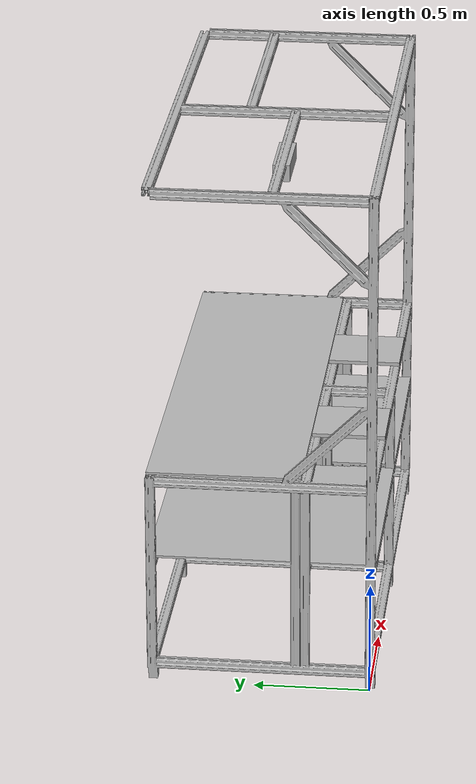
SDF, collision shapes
<?xml version='1.0'?>
<sdf version="1.4">
<model name="workcell-assembly-v2">
<static>false</static>

  <!-- workcell-assembly-v2 -->
  <link name="workcell-assembly-v2">
    <pose>0 0 0.07 0 0 0</pose>
    <inertial>
      <mass>13.55</mass>
      <inertia><ixx>0.294</ixx><iyy>0.294</iyy><izz>0.023</izz><ixy>0</ixy><ixz>0</ixz><iyz>0</iyz></inertia>
    </inertial>
    <collision name="collision">
      <geometry>
          <mesh>
            <uri>model://workcell-assembly-v2/meshes/workcell-assembly-v2.stl</uri>
          </mesh>
      </geometry>
    </collision>
    <visual name="visual">
      <geometry>
          <mesh>
            <uri>model://workcell-assembly-v2/meshes/workcell-assembly-v2.stl</uri>
          </mesh>
      </geometry>
    </visual>
  </link>

 <!-- robot-base-fixation1 -->
  <link name="robot-base-fixation1">
    <pose>0.62 0.138 0.97 0 0 0</pose>			<!-- to move the arm-base edit the x-coordinate -->
    <inertial>
      <mass>1.84</mass>
      <inertia><ixx>0.294</ixx><iyy>0.294</iyy><izz>0.023</izz><ixy>0</ixy><ixz>0</ixz><iyz>0</iyz></inertia>
    </inertial>
    <collision name="collision">
      <geometry>
          <mesh>
            <uri>model://workcell-assembly-v2/meshes/robot-base-fixation.stl</uri>
          </mesh>
      </geometry>
    </collision>
    <visual name="visual">
      <geometry>
          <mesh>
            <uri>model://workcell-assembly-v2/meshes/robot-base-fixation.stl</uri>
          </mesh>
      </geometry>
    </visual>
  </link>

  <!-- robot-base-fixation2 -->
  <link name="robot-base-fixation2">
    <pose>1.42 0.138 0.97 0 0 0</pose>			<!-- to move the arm-base edit the x-coordinate -->
    <inertial>
      <mass>1.84</mass>
      <inertia><ixx>0.294</ixx><iyy>0.294</iyy><izz>0.023</izz><ixy>0</ixy><ixz>0</ixz><iyz>0</iyz></inertia>
    </inertial>
    <collision name="collision">
      <geometry>
          <mesh>
            <uri>model://workcell-assembly-v2/meshes/robot-base-fixation.stl</uri>
          </mesh>
      </geometry>
    </collision>
    <visual name="visual">
      <geometry>
          <mesh>
            <uri>model://workcell-assembly-v2/meshes/robot-base-fixation.stl</uri>
          </mesh>
      </geometry>
    </visual>
  </link>

<!-- camera-movable-fixation1 -->
  <link name="camera-movable-fixation1">
    <pose>0.02 0.42 2.25 0 0 0</pose>			<!-- to move the camera edit the y-coordinate -->
    <inertial>
      <mass>1.84</mass>
      <inertia><ixx>0.294</ixx><iyy>0.294</iyy><izz>0.023</izz><ixy>0</ixy><ixz>0</ixz><iyz>0</iyz></inertia>
    </inertial>
    <collision name="collision">
      <geometry>
          <mesh>
            <uri>model://workcell-assembly-v2/meshes/camera-movable-fixation.stl</uri>
          </mesh>
      </geometry>
    </collision>
    <visual name="visual">
      <geometry>
          <mesh>
            <uri>model://workcell-assembly-v2/meshes/camera-movable-fixation.stl</uri>
          </mesh>
      </geometry>
    </visual>
  </link>

<!-- camera-movable-fixation2 -->
  <link name="camera-movable-fixation2">
    <pose>1.04 0.62 2.25 0 0 0</pose>			<!-- to move the camera edit the y-coordinate -->
    <inertial>
      <mass>1.84</mass>
      <inertia><ixx>0.294</ixx><iyy>0.294</iyy><izz>0.023</izz><ixy>0</ixy><ixz>0</ixz><iyz>0</iyz></inertia>
    </inertial>
    <collision name="collision">
      <geometry>
          <mesh>
            <uri>model://workcell-assembly-v2/meshes/camera-movable-fixation.stl</uri>
          </mesh>
      </geometry>
    </collision>
    <visual name="visual">
      <geometry>
          <mesh>
            <uri>model://workcell-assembly-v2/meshes/camera-movable-fixation.stl</uri>
          </mesh>
      </geometry>
    </visual>
  </link>

  <!-- Top Kinect Camera -->
  <link name="camera_link">

    <pose>0.52 0.42 2.214 0 1.57 -1.57</pose>
      <inertial>
        <mass>0.1</mass>
      </inertial>
      <collision name="collision">
        <geometry>
          <box>
            <size>0.073000 0.276000 0.072000</size>
          </box>
        </geometry>
      </collision>
      <visual name="visual">
        <geometry>
          <mesh>
            <uri>model://kinect/meshes/kinect.dae</uri>
          </mesh>
        </geometry>
      </visual>
      <sensor name="camera" type="depth">
        <update_rate>20</update_rate>
        <camera>
          <horizontal_fov>1.047198</horizontal_fov>
          <image>
            <width>640</width>
            <height>480</height>
            <format>R8G8B8</format>
          </image>
          <clip>
            <near>0.05</near>
            <far>3</far>
          </clip>
        </camera>
        <plugin name="camera_plugin" filename="libgazebo_ros_openni_kinect.so">
          <baseline>0.2</baseline>
          <alwaysOn>true</alwaysOn>
          <updateRate>0.0</updateRate>
          <cameraName>kinect_camera_ir</cameraName>
          <imageTopicName>/kinect_camera/depth/image_raw</imageTopicName>
          <cameraInfoTopicName>/kinect_camera/depth/camera_info</cameraInfoTopicName>
          <depthImageTopicName>/kinect_camera/depth/depth_image_raw</depthImageTopicName>
          <depthImageInfoTopicName>/kinect_camera/depth/camera_info</depthImageInfoTopicName>
          <pointCloudTopicName>/kinect_camera/depth/points</pointCloudTopicName>
          <frameName>camera_link</frameName>
          <pointCloudCutoff>0.05</pointCloudCutoff>
          <distortionK1>0</distortionK1>
          <distortionK2>0</distortionK2>
          <distortionK3>0</distortionK3>
          <distortionT1>0</distortionT1>
          <distortionT2>0</distortionT2>
          <CxPrime>0</CxPrime>
          <Cx>0</Cx>
          <Cy>0</Cy>
          <focalLength>0</focalLength>
          <hackBaseline>0</hackBaseline>
        </plugin>
      </sensor>

  </link>

<link name="camera_link_optical">
<pose>0.52 0.42 2.214 3.204 -0.075 3.2514</pose>
</link>

<!-- fix to ground -->
  <joint name="fix-to-ground" type="fixed">
    <pose>0 0 0 0 0 0</pose>
    <parent>world</parent>
    <child>workcell-assembly-v2</child>
  </joint>

  <!-- fix robot-base-fixation1 to workcell -->
  <joint name="fix-robot-base-fixation1" type="fixed">
    <pose>0 0 0 0 0 0</pose>
    <parent>workcell-assembly-v2</parent>
    <child>robot-base-fixation1</child>
  </joint>

  <!-- fix robot-base-fixation2 to workcell -->
  <joint name="fix-robot-base-fixation2" type="fixed">
    <pose>0 0 0 0 0 0</pose>
    <parent>workcell-assembly-v2</parent>
    <child>robot-base-fixation2</child>
  </joint>

  <!-- fix camera-movable-fixation1 to workcell -->
  <joint name="fix-camera-movable-fixation1" type="fixed">
    <pose>0 0 0 0 0 0</pose>
    <parent>workcell-assembly-v2</parent>
    <child>camera-movable-fixation1</child>
  </joint>

  <!-- fix camera-movable-fixation2 to workcell -->
  <joint name="fix-camera-movable-fixation2" type="fixed">
    <pose>0 0 0 0 0 0</pose>
    <parent>workcell-assembly-v2</parent>
    <child>camera-movable-fixation2</child>
  </joint>

 <!-- camera joint -->
   <joint name="camera_joint" type="fixed">
    <pose>0 0 0 0 0 0</pose>
    <parent>camera-movable-fixation1</parent>
    <child>camera_link</child>
  </joint>

   <!-- generate an optical frame
      http://www.ros.org/reps/rep-0103.html#suffix-frames
      so that ros and opencv can operate on the camera frame correctly
      -->
  <joint name="camera_optical_joint" type="fixed">
    <!-- these values have to be these values otherwise the gazebo camera
        image won't be aligned properly with the frame it is supposedly
        originating from -->
    <pose> 0 0 0 -1.57 3.414 -1.57 </pose>
    <parent>camera_link</parent>
    <child>camera_link_optical</child>
  </joint>

  </model>

  </sdf>
